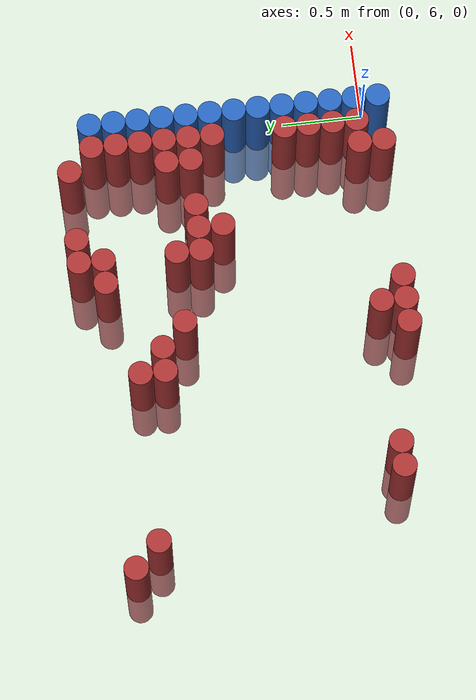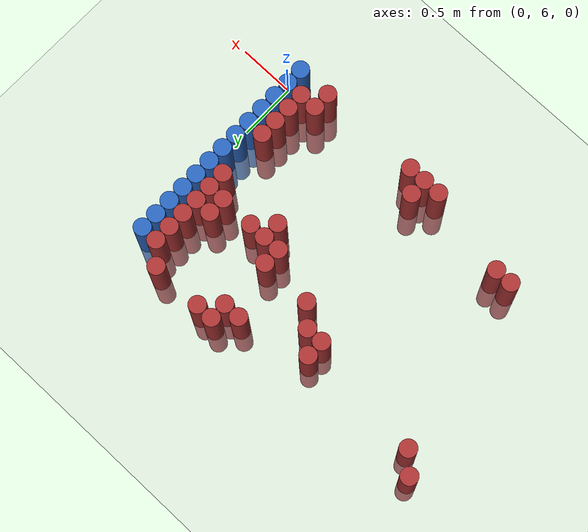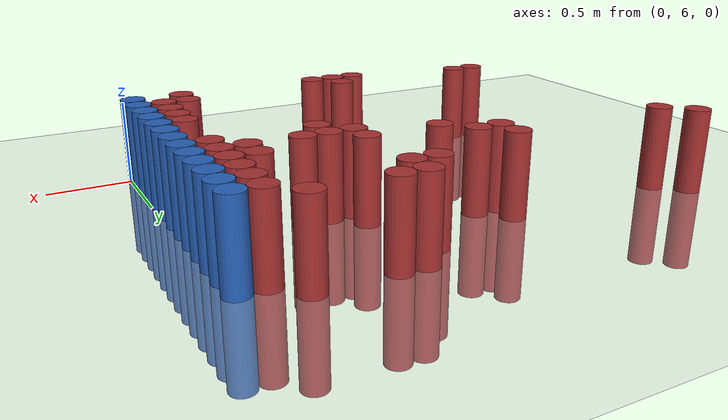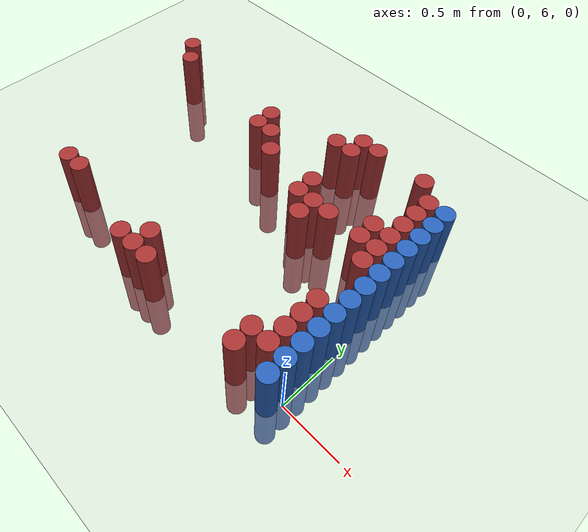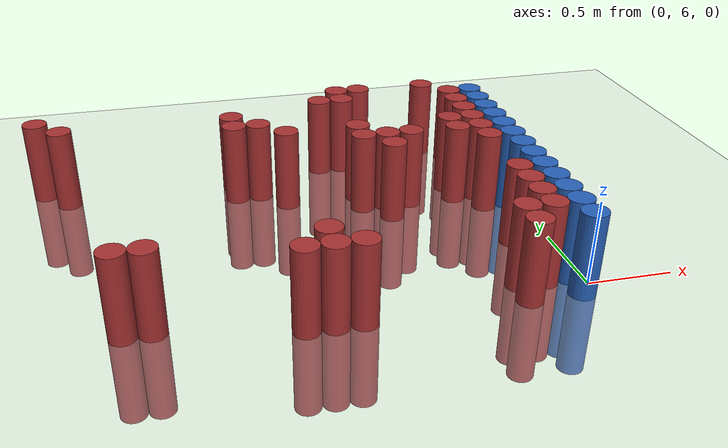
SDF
<sdf version="1.6">
 <world name="default">
  <model name="ground_plane">
   <static>1</static>
   <link name="link">
    <collision name="collision">
     <geometry><plane><normal>0 0 1</normal><size>100 100</size></plane></geometry>
     <surface><friction><ode><mu>100</mu><mu2>50</mu2></ode></friction></surface>
    </collision>
    <visual name="visual">
     <cast_shadows>0</cast_shadows>
     <geometry><plane><normal>0 0 1</normal><size>100 100</size></plane></geometry>
     <material>
      <script><uri>file://media/materials/scripts/gazebo.material</uri><name>Gazebo/Grey</name></script>
     </material>
    </visual>
   </link>
  </model>
  <model name="unit_cylinder_204">
   <static>1</static>
   <pose>-2.925000 7.725000 0.000000 0.000000 0.000000 0.000000</pose>
   <link name="link">
    <inertial>
     <mass>1</mass>
     <inertia><ixx>0.145833</ixx><ixy>0</ixy><ixz>0</ixz><iyy>0.145833</iyy><iyz>0</iyz><izz>0.125</izz></inertia>
    </inertial>
    <collision name="collision">
     <geometry><cylinder><radius>0.075000</radius><length>1</length></cylinder></geometry>
    </collision>
    <visual name="visual">
     <geometry><cylinder><radius>0.075000</radius><length>1</length></cylinder></geometry>
     <material>
      <ambient>0.648000 0.192000 0.192000 1</ambient>
      <diffuse>0.648000 0.192000 0.192000 1</diffuse>
     </material>
     <material>
      <script><name>Gazebo/Grey</name><uri>file://media/materials/scripts/gazebo.material</uri></script>
     </material>
    </visual>
   </link>
  </model>
  <model name="unit_cylinder_206">
   <static>1</static>
   <pose>-2.775000 7.575000 0.000000 0.000000 0.000000 0.000000</pose>
   <link name="link">
    <inertial>
     <mass>1</mass>
     <inertia><ixx>0.145833</ixx><ixy>0</ixy><ixz>0</ixz><iyy>0.145833</iyy><iyz>0</iyz><izz>0.125</izz></inertia>
    </inertial>
    <collision name="collision">
     <geometry><cylinder><radius>0.075000</radius><length>1</length></cylinder></geometry>
    </collision>
    <visual name="visual">
     <geometry><cylinder><radius>0.075000</radius><length>1</length></cylinder></geometry>
     <material>
      <ambient>0.648000 0.192000 0.192000 1</ambient>
      <diffuse>0.648000 0.192000 0.192000 1</diffuse>
     </material>
     <material>
      <script><name>Gazebo/Grey</name><uri>file://media/materials/scripts/gazebo.material</uri></script>
     </material>
    </visual>
   </link>
  </model>
  <model name="unit_cylinder_214">
   <static>1</static>
   <pose>-2.475000 6.075000 0.000000 0.000000 0.000000 0.000000</pose>
   <link name="link">
    <inertial>
     <mass>1</mass>
     <inertia><ixx>0.145833</ixx><ixy>0</ixy><ixz>0</ixz><iyy>0.145833</iyy><iyz>0</iyz><izz>0.125</izz></inertia>
    </inertial>
    <collision name="collision">
     <geometry><cylinder><radius>0.075000</radius><length>1</length></cylinder></geometry>
    </collision>
    <visual name="visual">
     <geometry><cylinder><radius>0.075000</radius><length>1</length></cylinder></geometry>
     <material>
      <ambient>0.648000 0.192000 0.192000 1</ambient>
      <diffuse>0.648000 0.192000 0.192000 1</diffuse>
     </material>
     <material>
      <script><name>Gazebo/Grey</name><uri>file://media/materials/scripts/gazebo.material</uri></script>
     </material>
    </visual>
   </link>
  </model>
  <model name="unit_cylinder_218">
   <static>1</static>
   <pose>-2.325000 6.075000 0.000000 0.000000 0.000000 0.000000</pose>
   <link name="link">
    <inertial>
     <mass>1</mass>
     <inertia><ixx>0.145833</ixx><ixy>0</ixy><ixz>0</ixz><iyy>0.145833</iyy><iyz>0</iyz><izz>0.125</izz></inertia>
    </inertial>
    <collision name="collision">
     <geometry><cylinder><radius>0.075000</radius><length>1</length></cylinder></geometry>
    </collision>
    <visual name="visual">
     <geometry><cylinder><radius>0.075000</radius><length>1</length></cylinder></geometry>
     <material>
      <ambient>0.648000 0.192000 0.192000 1</ambient>
      <diffuse>0.648000 0.192000 0.192000 1</diffuse>
     </material>
     <material>
      <script><name>Gazebo/Grey</name><uri>file://media/materials/scripts/gazebo.material</uri></script>
     </material>
    </visual>
   </link>
  </model>
  <model name="unit_cylinder_235">
   <static>1</static>
   <pose>-1.725000 7.425000 0.000000 0.000000 0.000000 0.000000</pose>
   <link name="link">
    <inertial>
     <mass>1</mass>
     <inertia><ixx>0.145833</ixx><ixy>0</ixy><ixz>0</ixz><iyy>0.145833</iyy><iyz>0</iyz><izz>0.125</izz></inertia>
    </inertial>
    <collision name="collision">
     <geometry><cylinder><radius>0.075000</radius><length>1</length></cylinder></geometry>
    </collision>
    <visual name="visual">
     <geometry><cylinder><radius>0.075000</radius><length>1</length></cylinder></geometry>
     <material>
      <ambient>0.648000 0.192000 0.192000 1</ambient>
      <diffuse>0.648000 0.192000 0.192000 1</diffuse>
     </material>
     <material>
      <script><name>Gazebo/Grey</name><uri>file://media/materials/scripts/gazebo.material</uri></script>
     </material>
    </visual>
   </link>
  </model>
  <model name="unit_cylinder_236">
   <static>1</static>
   <pose>-1.725000 7.575000 0.000000 0.000000 0.000000 0.000000</pose>
   <link name="link">
    <inertial>
     <mass>1</mass>
     <inertia><ixx>0.145833</ixx><ixy>0</ixy><ixz>0</ixz><iyy>0.145833</iyy><iyz>0</iyz><izz>0.125</izz></inertia>
    </inertial>
    <collision name="collision">
     <geometry><cylinder><radius>0.075000</radius><length>1</length></cylinder></geometry>
    </collision>
    <visual name="visual">
     <geometry><cylinder><radius>0.075000</radius><length>1</length></cylinder></geometry>
     <material>
      <ambient>0.648000 0.192000 0.192000 1</ambient>
      <diffuse>0.648000 0.192000 0.192000 1</diffuse>
     </material>
     <material>
      <script><name>Gazebo/Grey</name><uri>file://media/materials/scripts/gazebo.material</uri></script>
     </material>
    </visual>
   </link>
  </model>
  <model name="unit_cylinder_240">
   <static>1</static>
   <pose>-1.575000 5.925000 0.000000 0.000000 0.000000 0.000000</pose>
   <link name="link">
    <inertial>
     <mass>1</mass>
     <inertia><ixx>0.145833</ixx><ixy>0</ixy><ixz>0</ixz><iyy>0.145833</iyy><iyz>0</iyz><izz>0.125</izz></inertia>
    </inertial>
    <collision name="collision">
     <geometry><cylinder><radius>0.075000</radius><length>1</length></cylinder></geometry>
    </collision>
    <visual name="visual">
     <geometry><cylinder><radius>0.075000</radius><length>1</length></cylinder></geometry>
     <material>
      <ambient>0.648000 0.192000 0.192000 1</ambient>
      <diffuse>0.648000 0.192000 0.192000 1</diffuse>
     </material>
     <material>
      <script><name>Gazebo/Grey</name><uri>file://media/materials/scripts/gazebo.material</uri></script>
     </material>
    </visual>
   </link>
  </model>
  <model name="unit_cylinder_241">
   <static>1</static>
   <pose>-1.575000 7.425000 0.000000 0.000000 0.000000 0.000000</pose>
   <link name="link">
    <inertial>
     <mass>1</mass>
     <inertia><ixx>0.145833</ixx><ixy>0</ixy><ixz>0</ixz><iyy>0.145833</iyy><iyz>0</iyz><izz>0.125</izz></inertia>
    </inertial>
    <collision name="collision">
     <geometry><cylinder><radius>0.075000</radius><length>1</length></cylinder></geometry>
    </collision>
    <visual name="visual">
     <geometry><cylinder><radius>0.075000</radius><length>1</length></cylinder></geometry>
     <material>
      <ambient>0.648000 0.192000 0.192000 1</ambient>
      <diffuse>0.648000 0.192000 0.192000 1</diffuse>
     </material>
     <material>
      <script><name>Gazebo/Grey</name><uri>file://media/materials/scripts/gazebo.material</uri></script>
     </material>
    </visual>
   </link>
  </model>
  <model name="unit_cylinder_244">
   <static>1</static>
   <pose>-1.425000 5.925000 0.000000 0.000000 0.000000 0.000000</pose>
   <link name="link">
    <inertial>
     <mass>1</mass>
     <inertia><ixx>0.145833</ixx><ixy>0</ixy><ixz>0</ixz><iyy>0.145833</iyy><iyz>0</iyz><izz>0.125</izz></inertia>
    </inertial>
    <collision name="collision">
     <geometry><cylinder><radius>0.075000</radius><length>1</length></cylinder></geometry>
    </collision>
    <visual name="visual">
     <geometry><cylinder><radius>0.075000</radius><length>1</length></cylinder></geometry>
     <material>
      <ambient>0.648000 0.192000 0.192000 1</ambient>
      <diffuse>0.648000 0.192000 0.192000 1</diffuse>
     </material>
     <material>
      <script><name>Gazebo/Grey</name><uri>file://media/materials/scripts/gazebo.material</uri></script>
     </material>
    </visual>
   </link>
  </model>
  <model name="unit_cylinder_245">
   <static>1</static>
   <pose>-1.425000 6.075000 0.000000 0.000000 0.000000 0.000000</pose>
   <link name="link">
    <inertial>
     <mass>1</mass>
     <inertia><ixx>0.145833</ixx><ixy>0</ixy><ixz>0</ixz><iyy>0.145833</iyy><iyz>0</iyz><izz>0.125</izz></inertia>
    </inertial>
    <collision name="collision">
     <geometry><cylinder><radius>0.075000</radius><length>1</length></cylinder></geometry>
    </collision>
    <visual name="visual">
     <geometry><cylinder><radius>0.075000</radius><length>1</length></cylinder></geometry>
     <material>
      <ambient>0.648000 0.192000 0.192000 1</ambient>
      <diffuse>0.648000 0.192000 0.192000 1</diffuse>
     </material>
     <material>
      <script><name>Gazebo/Grey</name><uri>file://media/materials/scripts/gazebo.material</uri></script>
     </material>
    </visual>
   </link>
  </model>
  <model name="unit_cylinder_246">
   <static>1</static>
   <pose>-1.425000 7.275000 0.000000 0.000000 0.000000 0.000000</pose>
   <link name="link">
    <inertial>
     <mass>1</mass>
     <inertia><ixx>0.145833</ixx><ixy>0</ixy><ixz>0</ixz><iyy>0.145833</iyy><iyz>0</iyz><izz>0.125</izz></inertia>
    </inertial>
    <collision name="collision">
     <geometry><cylinder><radius>0.075000</radius><length>1</length></cylinder></geometry>
    </collision>
    <visual name="visual">
     <geometry><cylinder><radius>0.075000</radius><length>1</length></cylinder></geometry>
     <material>
      <ambient>0.648000 0.192000 0.192000 1</ambient>
      <diffuse>0.648000 0.192000 0.192000 1</diffuse>
     </material>
     <material>
      <script><name>Gazebo/Grey</name><uri>file://media/materials/scripts/gazebo.material</uri></script>
     </material>
    </visual>
   </link>
  </model>
  <model name="unit_cylinder_253">
   <static>1</static>
   <pose>-1.275000 5.925000 0.000000 0.000000 0.000000 0.000000</pose>
   <link name="link">
    <inertial>
     <mass>1</mass>
     <inertia><ixx>0.145833</ixx><ixy>0</ixy><ixz>0</ixz><iyy>0.145833</iyy><iyz>0</iyz><izz>0.125</izz></inertia>
    </inertial>
    <collision name="collision">
     <geometry><cylinder><radius>0.075000</radius><length>1</length></cylinder></geometry>
    </collision>
    <visual name="visual">
     <geometry><cylinder><radius>0.075000</radius><length>1</length></cylinder></geometry>
     <material>
      <ambient>0.648000 0.192000 0.192000 1</ambient>
      <diffuse>0.648000 0.192000 0.192000 1</diffuse>
     </material>
     <material>
      <script><name>Gazebo/Grey</name><uri>file://media/materials/scripts/gazebo.material</uri></script>
     </material>
    </visual>
   </link>
  </model>
  <model name="unit_cylinder_256">
   <static>1</static>
   <pose>-1.125000 7.725000 0.000000 0.000000 0.000000 0.000000</pose>
   <link name="link">
    <inertial>
     <mass>1</mass>
     <inertia><ixx>0.145833</ixx><ixy>0</ixy><ixz>0</ixz><iyy>0.145833</iyy><iyz>0</iyz><izz>0.125</izz></inertia>
    </inertial>
    <collision name="collision">
     <geometry><cylinder><radius>0.075000</radius><length>1</length></cylinder></geometry>
    </collision>
    <visual name="visual">
     <geometry><cylinder><radius>0.075000</radius><length>1</length></cylinder></geometry>
     <material>
      <ambient>0.648000 0.192000 0.192000 1</ambient>
      <diffuse>0.648000 0.192000 0.192000 1</diffuse>
     </material>
     <material>
      <script><name>Gazebo/Grey</name><uri>file://media/materials/scripts/gazebo.material</uri></script>
     </material>
    </visual>
   </link>
  </model>
  <model name="unit_cylinder_261">
   <static>1</static>
   <pose>-0.975000 7.125000 0.000000 0.000000 0.000000 0.000000</pose>
   <link name="link">
    <inertial>
     <mass>1</mass>
     <inertia><ixx>0.145833</ixx><ixy>0</ixy><ixz>0</ixz><iyy>0.145833</iyy><iyz>0</iyz><izz>0.125</izz></inertia>
    </inertial>
    <collision name="collision">
     <geometry><cylinder><radius>0.075000</radius><length>1</length></cylinder></geometry>
    </collision>
    <visual name="visual">
     <geometry><cylinder><radius>0.075000</radius><length>1</length></cylinder></geometry>
     <material>
      <ambient>0.648000 0.192000 0.192000 1</ambient>
      <diffuse>0.648000 0.192000 0.192000 1</diffuse>
     </material>
     <material>
      <script><name>Gazebo/Grey</name><uri>file://media/materials/scripts/gazebo.material</uri></script>
     </material>
    </visual>
   </link>
  </model>
  <model name="unit_cylinder_262">
   <static>1</static>
   <pose>-0.975000 7.275000 0.000000 0.000000 0.000000 0.000000</pose>
   <link name="link">
    <inertial>
     <mass>1</mass>
     <inertia><ixx>0.145833</ixx><ixy>0</ixy><ixz>0</ixz><iyy>0.145833</iyy><iyz>0</iyz><izz>0.125</izz></inertia>
    </inertial>
    <collision name="collision">
     <geometry><cylinder><radius>0.075000</radius><length>1</length></cylinder></geometry>
    </collision>
    <visual name="visual">
     <geometry><cylinder><radius>0.075000</radius><length>1</length></cylinder></geometry>
     <material>
      <ambient>0.648000 0.192000 0.192000 1</ambient>
      <diffuse>0.648000 0.192000 0.192000 1</diffuse>
     </material>
     <material>
      <script><name>Gazebo/Grey</name><uri>file://media/materials/scripts/gazebo.material</uri></script>
     </material>
    </visual>
   </link>
  </model>
  <model name="unit_cylinder_263">
   <static>1</static>
   <pose>-0.975000 7.725000 0.000000 0.000000 0.000000 0.000000</pose>
   <link name="link">
    <inertial>
     <mass>1</mass>
     <inertia><ixx>0.145833</ixx><ixy>0</ixy><ixz>0</ixz><iyy>0.145833</iyy><iyz>0</iyz><izz>0.125</izz></inertia>
    </inertial>
    <collision name="collision">
     <geometry><cylinder><radius>0.075000</radius><length>1</length></cylinder></geometry>
    </collision>
    <visual name="visual">
     <geometry><cylinder><radius>0.075000</radius><length>1</length></cylinder></geometry>
     <material>
      <ambient>0.648000 0.192000 0.192000 1</ambient>
      <diffuse>0.648000 0.192000 0.192000 1</diffuse>
     </material>
     <material>
      <script><name>Gazebo/Grey</name><uri>file://media/materials/scripts/gazebo.material</uri></script>
     </material>
    </visual>
   </link>
  </model>
  <model name="unit_cylinder_264">
   <static>1</static>
   <pose>-0.975000 7.875000 0.000000 0.000000 0.000000 0.000000</pose>
   <link name="link">
    <inertial>
     <mass>1</mass>
     <inertia><ixx>0.145833</ixx><ixy>0</ixy><ixz>0</ixz><iyy>0.145833</iyy><iyz>0</iyz><izz>0.125</izz></inertia>
    </inertial>
    <collision name="collision">
     <geometry><cylinder><radius>0.075000</radius><length>1</length></cylinder></geometry>
    </collision>
    <visual name="visual">
     <geometry><cylinder><radius>0.075000</radius><length>1</length></cylinder></geometry>
     <material>
      <ambient>0.648000 0.192000 0.192000 1</ambient>
      <diffuse>0.648000 0.192000 0.192000 1</diffuse>
     </material>
     <material>
      <script><name>Gazebo/Grey</name><uri>file://media/materials/scripts/gazebo.material</uri></script>
     </material>
    </visual>
   </link>
  </model>
  <model name="unit_cylinder_270">
   <static>1</static>
   <pose>-0.825000 6.975000 0.000000 0.000000 0.000000 0.000000</pose>
   <link name="link">
    <inertial>
     <mass>1</mass>
     <inertia><ixx>0.145833</ixx><ixy>0</ixy><ixz>0</ixz><iyy>0.145833</iyy><iyz>0</iyz><izz>0.125</izz></inertia>
    </inertial>
    <collision name="collision">
     <geometry><cylinder><radius>0.075000</radius><length>1</length></cylinder></geometry>
    </collision>
    <visual name="visual">
     <geometry><cylinder><radius>0.075000</radius><length>1</length></cylinder></geometry>
     <material>
      <ambient>0.648000 0.192000 0.192000 1</ambient>
      <diffuse>0.648000 0.192000 0.192000 1</diffuse>
     </material>
     <material>
      <script><name>Gazebo/Grey</name><uri>file://media/materials/scripts/gazebo.material</uri></script>
     </material>
    </visual>
   </link>
  </model>
  <model name="unit_cylinder_271">
   <static>1</static>
   <pose>-0.825000 7.125000 0.000000 0.000000 0.000000 0.000000</pose>
   <link name="link">
    <inertial>
     <mass>1</mass>
     <inertia><ixx>0.145833</ixx><ixy>0</ixy><ixz>0</ixz><iyy>0.145833</iyy><iyz>0</iyz><izz>0.125</izz></inertia>
    </inertial>
    <collision name="collision">
     <geometry><cylinder><radius>0.075000</radius><length>1</length></cylinder></geometry>
    </collision>
    <visual name="visual">
     <geometry><cylinder><radius>0.075000</radius><length>1</length></cylinder></geometry>
     <material>
      <ambient>0.648000 0.192000 0.192000 1</ambient>
      <diffuse>0.648000 0.192000 0.192000 1</diffuse>
     </material>
     <material>
      <script><name>Gazebo/Grey</name><uri>file://media/materials/scripts/gazebo.material</uri></script>
     </material>
    </visual>
   </link>
  </model>
  <model name="unit_cylinder_272">
   <static>1</static>
   <pose>-0.825000 7.875000 0.000000 0.000000 0.000000 0.000000</pose>
   <link name="link">
    <inertial>
     <mass>1</mass>
     <inertia><ixx>0.145833</ixx><ixy>0</ixy><ixz>0</ixz><iyy>0.145833</iyy><iyz>0</iyz><izz>0.125</izz></inertia>
    </inertial>
    <collision name="collision">
     <geometry><cylinder><radius>0.075000</radius><length>1</length></cylinder></geometry>
    </collision>
    <visual name="visual">
     <geometry><cylinder><radius>0.075000</radius><length>1</length></cylinder></geometry>
     <material>
      <ambient>0.648000 0.192000 0.192000 1</ambient>
      <diffuse>0.648000 0.192000 0.192000 1</diffuse>
     </material>
     <material>
      <script><name>Gazebo/Grey</name><uri>file://media/materials/scripts/gazebo.material</uri></script>
     </material>
    </visual>
   </link>
  </model>
  <model name="unit_cylinder_277">
   <static>1</static>
   <pose>-0.675000 7.125000 0.000000 0.000000 0.000000 0.000000</pose>
   <link name="link">
    <inertial>
     <mass>1</mass>
     <inertia><ixx>0.145833</ixx><ixy>0</ixy><ixz>0</ixz><iyy>0.145833</iyy><iyz>0</iyz><izz>0.125</izz></inertia>
    </inertial>
    <collision name="collision">
     <geometry><cylinder><radius>0.075000</radius><length>1</length></cylinder></geometry>
    </collision>
    <visual name="visual">
     <geometry><cylinder><radius>0.075000</radius><length>1</length></cylinder></geometry>
     <material>
      <ambient>0.648000 0.192000 0.192000 1</ambient>
      <diffuse>0.648000 0.192000 0.192000 1</diffuse>
     </material>
     <material>
      <script><name>Gazebo/Grey</name><uri>file://media/materials/scripts/gazebo.material</uri></script>
     </material>
    </visual>
   </link>
  </model>
  <model name="unit_cylinder_287">
   <static>1</static>
   <pose>-0.375000 5.925000 0.000000 0.000000 0.000000 0.000000</pose>
   <link name="link">
    <inertial>
     <mass>1</mass>
     <inertia><ixx>0.145833</ixx><ixy>0</ixy><ixz>0</ixz><iyy>0.145833</iyy><iyz>0</iyz><izz>0.125</izz></inertia>
    </inertial>
    <collision name="collision">
     <geometry><cylinder><radius>0.075000</radius><length>1</length></cylinder></geometry>
    </collision>
    <visual name="visual">
     <geometry><cylinder><radius>0.075000</radius><length>1</length></cylinder></geometry>
     <material>
      <ambient>0.648000 0.192000 0.192000 1</ambient>
      <diffuse>0.648000 0.192000 0.192000 1</diffuse>
     </material>
     <material>
      <script><name>Gazebo/Grey</name><uri>file://media/materials/scripts/gazebo.material</uri></script>
     </material>
    </visual>
   </link>
  </model>
  <model name="unit_cylinder_288">
   <static>1</static>
   <pose>-0.375000 6.075000 0.000000 0.000000 0.000000 0.000000</pose>
   <link name="link">
    <inertial>
     <mass>1</mass>
     <inertia><ixx>0.145833</ixx><ixy>0</ixy><ixz>0</ixz><iyy>0.145833</iyy><iyz>0</iyz><izz>0.125</izz></inertia>
    </inertial>
    <collision name="collision">
     <geometry><cylinder><radius>0.075000</radius><length>1</length></cylinder></geometry>
    </collision>
    <visual name="visual">
     <geometry><cylinder><radius>0.075000</radius><length>1</length></cylinder></geometry>
     <material>
      <ambient>0.648000 0.192000 0.192000 1</ambient>
      <diffuse>0.648000 0.192000 0.192000 1</diffuse>
     </material>
     <material>
      <script><name>Gazebo/Grey</name><uri>file://media/materials/scripts/gazebo.material</uri></script>
     </material>
    </visual>
   </link>
  </model>
  <model name="unit_cylinder_289">
   <static>1</static>
   <pose>-0.375000 7.125000 0.000000 0.000000 0.000000 0.000000</pose>
   <link name="link">
    <inertial>
     <mass>1</mass>
     <inertia><ixx>0.145833</ixx><ixy>0</ixy><ixz>0</ixz><iyy>0.145833</iyy><iyz>0</iyz><izz>0.125</izz></inertia>
    </inertial>
    <collision name="collision">
     <geometry><cylinder><radius>0.075000</radius><length>1</length></cylinder></geometry>
    </collision>
    <visual name="visual">
     <geometry><cylinder><radius>0.075000</radius><length>1</length></cylinder></geometry>
     <material>
      <ambient>0.648000 0.192000 0.192000 1</ambient>
      <diffuse>0.648000 0.192000 0.192000 1</diffuse>
     </material>
     <material>
      <script><name>Gazebo/Grey</name><uri>file://media/materials/scripts/gazebo.material</uri></script>
     </material>
    </visual>
   </link>
  </model>
  <model name="unit_cylinder_290">
   <static>1</static>
   <pose>-0.375000 7.275000 0.000000 0.000000 0.000000 0.000000</pose>
   <link name="link">
    <inertial>
     <mass>1</mass>
     <inertia><ixx>0.145833</ixx><ixy>0</ixy><ixz>0</ixz><iyy>0.145833</iyy><iyz>0</iyz><izz>0.125</izz></inertia>
    </inertial>
    <collision name="collision">
     <geometry><cylinder><radius>0.075000</radius><length>1</length></cylinder></geometry>
    </collision>
    <visual name="visual">
     <geometry><cylinder><radius>0.075000</radius><length>1</length></cylinder></geometry>
     <material>
      <ambient>0.648000 0.192000 0.192000 1</ambient>
      <diffuse>0.648000 0.192000 0.192000 1</diffuse>
     </material>
     <material>
      <script><name>Gazebo/Grey</name><uri>file://media/materials/scripts/gazebo.material</uri></script>
     </material>
    </visual>
   </link>
  </model>
  <model name="unit_cylinder_291">
   <static>1</static>
   <pose>-0.375000 7.875000 0.000000 0.000000 0.000000 0.000000</pose>
   <link name="link">
    <inertial>
     <mass>1</mass>
     <inertia><ixx>0.145833</ixx><ixy>0</ixy><ixz>0</ixz><iyy>0.145833</iyy><iyz>0</iyz><izz>0.125</izz></inertia>
    </inertial>
    <collision name="collision">
     <geometry><cylinder><radius>0.075000</radius><length>1</length></cylinder></geometry>
    </collision>
    <visual name="visual">
     <geometry><cylinder><radius>0.075000</radius><length>1</length></cylinder></geometry>
     <material>
      <ambient>0.648000 0.192000 0.192000 1</ambient>
      <diffuse>0.648000 0.192000 0.192000 1</diffuse>
     </material>
     <material>
      <script><name>Gazebo/Grey</name><uri>file://media/materials/scripts/gazebo.material</uri></script>
     </material>
    </visual>
   </link>
  </model>
  <model name="unit_cylinder_296">
   <static>1</static>
   <pose>-0.225000 6.075000 0.000000 0.000000 0.000000 0.000000</pose>
   <link name="link">
    <inertial>
     <mass>1</mass>
     <inertia><ixx>0.145833</ixx><ixy>0</ixy><ixz>0</ixz><iyy>0.145833</iyy><iyz>0</iyz><izz>0.125</izz></inertia>
    </inertial>
    <collision name="collision">
     <geometry><cylinder><radius>0.075000</radius><length>1</length></cylinder></geometry>
    </collision>
    <visual name="visual">
     <geometry><cylinder><radius>0.075000</radius><length>1</length></cylinder></geometry>
     <material>
      <ambient>0.648000 0.192000 0.192000 1</ambient>
      <diffuse>0.648000 0.192000 0.192000 1</diffuse>
     </material>
     <material>
      <script><name>Gazebo/Grey</name><uri>file://media/materials/scripts/gazebo.material</uri></script>
     </material>
    </visual>
   </link>
  </model>
  <model name="unit_cylinder_297">
   <static>1</static>
   <pose>-0.225000 6.225000 0.000000 0.000000 0.000000 0.000000</pose>
   <link name="link">
    <inertial>
     <mass>1</mass>
     <inertia><ixx>0.145833</ixx><ixy>0</ixy><ixz>0</ixz><iyy>0.145833</iyy><iyz>0</iyz><izz>0.125</izz></inertia>
    </inertial>
    <collision name="collision">
     <geometry><cylinder><radius>0.075000</radius><length>1</length></cylinder></geometry>
    </collision>
    <visual name="visual">
     <geometry><cylinder><radius>0.075000</radius><length>1</length></cylinder></geometry>
     <material>
      <ambient>0.648000 0.192000 0.192000 1</ambient>
      <diffuse>0.648000 0.192000 0.192000 1</diffuse>
     </material>
     <material>
      <script><name>Gazebo/Grey</name><uri>file://media/materials/scripts/gazebo.material</uri></script>
     </material>
    </visual>
   </link>
  </model>
  <model name="unit_cylinder_298">
   <static>1</static>
   <pose>-0.225000 6.375000 0.000000 0.000000 0.000000 0.000000</pose>
   <link name="link">
    <inertial>
     <mass>1</mass>
     <inertia><ixx>0.145833</ixx><ixy>0</ixy><ixz>0</ixz><iyy>0.145833</iyy><iyz>0</iyz><izz>0.125</izz></inertia>
    </inertial>
    <collision name="collision">
     <geometry><cylinder><radius>0.075000</radius><length>1</length></cylinder></geometry>
    </collision>
    <visual name="visual">
     <geometry><cylinder><radius>0.075000</radius><length>1</length></cylinder></geometry>
     <material>
      <ambient>0.648000 0.192000 0.192000 1</ambient>
      <diffuse>0.648000 0.192000 0.192000 1</diffuse>
     </material>
     <material>
      <script><name>Gazebo/Grey</name><uri>file://media/materials/scripts/gazebo.material</uri></script>
     </material>
    </visual>
   </link>
  </model>
  <model name="unit_cylinder_299">
   <static>1</static>
   <pose>-0.225000 6.525000 0.000000 0.000000 0.000000 0.000000</pose>
   <link name="link">
    <inertial>
     <mass>1</mass>
     <inertia><ixx>0.145833</ixx><ixy>0</ixy><ixz>0</ixz><iyy>0.145833</iyy><iyz>0</iyz><izz>0.125</izz></inertia>
    </inertial>
    <collision name="collision">
     <geometry><cylinder><radius>0.075000</radius><length>1</length></cylinder></geometry>
    </collision>
    <visual name="visual">
     <geometry><cylinder><radius>0.075000</radius><length>1</length></cylinder></geometry>
     <material>
      <ambient>0.648000 0.192000 0.192000 1</ambient>
      <diffuse>0.648000 0.192000 0.192000 1</diffuse>
     </material>
     <material>
      <script><name>Gazebo/Grey</name><uri>file://media/materials/scripts/gazebo.material</uri></script>
     </material>
    </visual>
   </link>
  </model>
  <model name="unit_cylinder_300">
   <static>1</static>
   <pose>-0.225000 6.975000 0.000000 0.000000 0.000000 0.000000</pose>
   <link name="link">
    <inertial>
     <mass>1</mass>
     <inertia><ixx>0.145833</ixx><ixy>0</ixy><ixz>0</ixz><iyy>0.145833</iyy><iyz>0</iyz><izz>0.125</izz></inertia>
    </inertial>
    <collision name="collision">
     <geometry><cylinder><radius>0.075000</radius><length>1</length></cylinder></geometry>
    </collision>
    <visual name="visual">
     <geometry><cylinder><radius>0.075000</radius><length>1</length></cylinder></geometry>
     <material>
      <ambient>0.648000 0.192000 0.192000 1</ambient>
      <diffuse>0.648000 0.192000 0.192000 1</diffuse>
     </material>
     <material>
      <script><name>Gazebo/Grey</name><uri>file://media/materials/scripts/gazebo.material</uri></script>
     </material>
    </visual>
   </link>
  </model>
  <model name="unit_cylinder_301">
   <static>1</static>
   <pose>-0.225000 7.125000 0.000000 0.000000 0.000000 0.000000</pose>
   <link name="link">
    <inertial>
     <mass>1</mass>
     <inertia><ixx>0.145833</ixx><ixy>0</ixy><ixz>0</ixz><iyy>0.145833</iyy><iyz>0</iyz><izz>0.125</izz></inertia>
    </inertial>
    <collision name="collision">
     <geometry><cylinder><radius>0.075000</radius><length>1</length></cylinder></geometry>
    </collision>
    <visual name="visual">
     <geometry><cylinder><radius>0.075000</radius><length>1</length></cylinder></geometry>
     <material>
      <ambient>0.648000 0.192000 0.192000 1</ambient>
      <diffuse>0.648000 0.192000 0.192000 1</diffuse>
     </material>
     <material>
      <script><name>Gazebo/Grey</name><uri>file://media/materials/scripts/gazebo.material</uri></script>
     </material>
    </visual>
   </link>
  </model>
  <model name="unit_cylinder_302">
   <static>1</static>
   <pose>-0.225000 7.275000 0.000000 0.000000 0.000000 0.000000</pose>
   <link name="link">
    <inertial>
     <mass>1</mass>
     <inertia><ixx>0.145833</ixx><ixy>0</ixy><ixz>0</ixz><iyy>0.145833</iyy><iyz>0</iyz><izz>0.125</izz></inertia>
    </inertial>
    <collision name="collision">
     <geometry><cylinder><radius>0.075000</radius><length>1</length></cylinder></geometry>
    </collision>
    <visual name="visual">
     <geometry><cylinder><radius>0.075000</radius><length>1</length></cylinder></geometry>
     <material>
      <ambient>0.648000 0.192000 0.192000 1</ambient>
      <diffuse>0.648000 0.192000 0.192000 1</diffuse>
     </material>
     <material>
      <script><name>Gazebo/Grey</name><uri>file://media/materials/scripts/gazebo.material</uri></script>
     </material>
    </visual>
   </link>
  </model>
  <model name="unit_cylinder_303">
   <static>1</static>
   <pose>-0.225000 7.425000 0.000000 0.000000 0.000000 0.000000</pose>
   <link name="link">
    <inertial>
     <mass>1</mass>
     <inertia><ixx>0.145833</ixx><ixy>0</ixy><ixz>0</ixz><iyy>0.145833</iyy><iyz>0</iyz><izz>0.125</izz></inertia>
    </inertial>
    <collision name="collision">
     <geometry><cylinder><radius>0.075000</radius><length>1</length></cylinder></geometry>
    </collision>
    <visual name="visual">
     <geometry><cylinder><radius>0.075000</radius><length>1</length></cylinder></geometry>
     <material>
      <ambient>0.648000 0.192000 0.192000 1</ambient>
      <diffuse>0.648000 0.192000 0.192000 1</diffuse>
     </material>
     <material>
      <script><name>Gazebo/Grey</name><uri>file://media/materials/scripts/gazebo.material</uri></script>
     </material>
    </visual>
   </link>
  </model>
  <model name="unit_cylinder_304">
   <static>1</static>
   <pose>-0.225000 7.575000 0.000000 0.000000 0.000000 0.000000</pose>
   <link name="link">
    <inertial>
     <mass>1</mass>
     <inertia><ixx>0.145833</ixx><ixy>0</ixy><ixz>0</ixz><iyy>0.145833</iyy><iyz>0</iyz><izz>0.125</izz></inertia>
    </inertial>
    <collision name="collision">
     <geometry><cylinder><radius>0.075000</radius><length>1</length></cylinder></geometry>
    </collision>
    <visual name="visual">
     <geometry><cylinder><radius>0.075000</radius><length>1</length></cylinder></geometry>
     <material>
      <ambient>0.648000 0.192000 0.192000 1</ambient>
      <diffuse>0.648000 0.192000 0.192000 1</diffuse>
     </material>
     <material>
      <script><name>Gazebo/Grey</name><uri>file://media/materials/scripts/gazebo.material</uri></script>
     </material>
    </visual>
   </link>
  </model>
  <model name="unit_cylinder_305">
   <static>1</static>
   <pose>-0.225000 7.725000 0.000000 0.000000 0.000000 0.000000</pose>
   <link name="link">
    <inertial>
     <mass>1</mass>
     <inertia><ixx>0.145833</ixx><ixy>0</ixy><ixz>0</ixz><iyy>0.145833</iyy><iyz>0</iyz><izz>0.125</izz></inertia>
    </inertial>
    <collision name="collision">
     <geometry><cylinder><radius>0.075000</radius><length>1</length></cylinder></geometry>
    </collision>
    <visual name="visual">
     <geometry><cylinder><radius>0.075000</radius><length>1</length></cylinder></geometry>
     <material>
      <ambient>0.648000 0.192000 0.192000 1</ambient>
      <diffuse>0.648000 0.192000 0.192000 1</diffuse>
     </material>
     <material>
      <script><name>Gazebo/Grey</name><uri>file://media/materials/scripts/gazebo.material</uri></script>
     </material>
    </visual>
   </link>
  </model>
  <model name="unit_cylinder_317">
   <static>1</static>
   <pose>-0.075000 5.925000 0.000000 0.000000 0.000000 0.000000</pose>
   <link name="link">
    <inertial>
     <mass>1</mass>
     <inertia><ixx>0.145833</ixx><ixy>0</ixy><ixz>0</ixz><iyy>0.145833</iyy><iyz>0</iyz><izz>0.125</izz></inertia>
    </inertial>
    <collision name="collision">
     <geometry><cylinder><radius>0.075000</radius><length>1</length></cylinder></geometry>
    </collision>
    <visual name="visual">
     <geometry><cylinder><radius>0.075000</radius><length>1</length></cylinder></geometry>
     <material>
      <ambient>0.152000 0.379000 0.720000 1</ambient>
      <diffuse>0.152000 0.379000 0.720000 1</diffuse>
     </material>
     <material>
      <script><name>Gazebo/Grey</name><uri>file://media/materials/scripts/gazebo.material</uri></script>
     </material>
    </visual>
   </link>
  </model>
  <model name="unit_cylinder_318">
   <static>1</static>
   <pose>-0.075000 6.075000 0.000000 0.000000 0.000000 0.000000</pose>
   <link name="link">
    <inertial>
     <mass>1</mass>
     <inertia><ixx>0.145833</ixx><ixy>0</ixy><ixz>0</ixz><iyy>0.145833</iyy><iyz>0</iyz><izz>0.125</izz></inertia>
    </inertial>
    <collision name="collision">
     <geometry><cylinder><radius>0.075000</radius><length>1</length></cylinder></geometry>
    </collision>
    <visual name="visual">
     <geometry><cylinder><radius>0.075000</radius><length>1</length></cylinder></geometry>
     <material>
      <ambient>0.152000 0.379000 0.720000 1</ambient>
      <diffuse>0.152000 0.379000 0.720000 1</diffuse>
     </material>
     <material>
      <script><name>Gazebo/Grey</name><uri>file://media/materials/scripts/gazebo.material</uri></script>
     </material>
    </visual>
   </link>
  </model>
  <model name="unit_cylinder_319">
   <static>1</static>
   <pose>-0.075000 6.225000 0.000000 0.000000 0.000000 0.000000</pose>
   <link name="link">
    <inertial>
     <mass>1</mass>
     <inertia><ixx>0.145833</ixx><ixy>0</ixy><ixz>0</ixz><iyy>0.145833</iyy><iyz>0</iyz><izz>0.125</izz></inertia>
    </inertial>
    <collision name="collision">
     <geometry><cylinder><radius>0.075000</radius><length>1</length></cylinder></geometry>
    </collision>
    <visual name="visual">
     <geometry><cylinder><radius>0.075000</radius><length>1</length></cylinder></geometry>
     <material>
      <ambient>0.152000 0.379000 0.720000 1</ambient>
      <diffuse>0.152000 0.379000 0.720000 1</diffuse>
     </material>
     <material>
      <script><name>Gazebo/Grey</name><uri>file://media/materials/scripts/gazebo.material</uri></script>
     </material>
    </visual>
   </link>
  </model>
  <model name="unit_cylinder_320">
   <static>1</static>
   <pose>-0.075000 6.375000 0.000000 0.000000 0.000000 0.000000</pose>
   <link name="link">
    <inertial>
     <mass>1</mass>
     <inertia><ixx>0.145833</ixx><ixy>0</ixy><ixz>0</ixz><iyy>0.145833</iyy><iyz>0</iyz><izz>0.125</izz></inertia>
    </inertial>
    <collision name="collision">
     <geometry><cylinder><radius>0.075000</radius><length>1</length></cylinder></geometry>
    </collision>
    <visual name="visual">
     <geometry><cylinder><radius>0.075000</radius><length>1</length></cylinder></geometry>
     <material>
      <ambient>0.152000 0.379000 0.720000 1</ambient>
      <diffuse>0.152000 0.379000 0.720000 1</diffuse>
     </material>
     <material>
      <script><name>Gazebo/Grey</name><uri>file://media/materials/scripts/gazebo.material</uri></script>
     </material>
    </visual>
   </link>
  </model>
  <model name="unit_cylinder_321">
   <static>1</static>
   <pose>-0.075000 6.525000 0.000000 0.000000 0.000000 0.000000</pose>
   <link name="link">
    <inertial>
     <mass>1</mass>
     <inertia><ixx>0.145833</ixx><ixy>0</ixy><ixz>0</ixz><iyy>0.145833</iyy><iyz>0</iyz><izz>0.125</izz></inertia>
    </inertial>
    <collision name="collision">
     <geometry><cylinder><radius>0.075000</radius><length>1</length></cylinder></geometry>
    </collision>
    <visual name="visual">
     <geometry><cylinder><radius>0.075000</radius><length>1</length></cylinder></geometry>
     <material>
      <ambient>0.152000 0.379000 0.720000 1</ambient>
      <diffuse>0.152000 0.379000 0.720000 1</diffuse>
     </material>
     <material>
      <script><name>Gazebo/Grey</name><uri>file://media/materials/scripts/gazebo.material</uri></script>
     </material>
    </visual>
   </link>
  </model>
  <model name="unit_cylinder_322">
   <static>1</static>
   <pose>-0.075000 6.675000 0.000000 0.000000 0.000000 0.000000</pose>
   <link name="link">
    <inertial>
     <mass>1</mass>
     <inertia><ixx>0.145833</ixx><ixy>0</ixy><ixz>0</ixz><iyy>0.145833</iyy><iyz>0</iyz><izz>0.125</izz></inertia>
    </inertial>
    <collision name="collision">
     <geometry><cylinder><radius>0.075000</radius><length>1</length></cylinder></geometry>
    </collision>
    <visual name="visual">
     <geometry><cylinder><radius>0.075000</radius><length>1</length></cylinder></geometry>
     <material>
      <ambient>0.152000 0.379000 0.720000 1</ambient>
      <diffuse>0.152000 0.379000 0.720000 1</diffuse>
     </material>
     <material>
      <script><name>Gazebo/Grey</name><uri>file://media/materials/scripts/gazebo.material</uri></script>
     </material>
    </visual>
   </link>
  </model>
  <model name="unit_cylinder_323">
   <static>1</static>
   <pose>-0.075000 6.825000 0.000000 0.000000 0.000000 0.000000</pose>
   <link name="link">
    <inertial>
     <mass>1</mass>
     <inertia><ixx>0.145833</ixx><ixy>0</ixy><ixz>0</ixz><iyy>0.145833</iyy><iyz>0</iyz><izz>0.125</izz></inertia>
    </inertial>
    <collision name="collision">
     <geometry><cylinder><radius>0.075000</radius><length>1</length></cylinder></geometry>
    </collision>
    <visual name="visual">
     <geometry><cylinder><radius>0.075000</radius><length>1</length></cylinder></geometry>
     <material>
      <ambient>0.152000 0.379000 0.720000 1</ambient>
      <diffuse>0.152000 0.379000 0.720000 1</diffuse>
     </material>
     <material>
      <script><name>Gazebo/Grey</name><uri>file://media/materials/scripts/gazebo.material</uri></script>
     </material>
    </visual>
   </link>
  </model>
  <model name="unit_cylinder_324">
   <static>1</static>
   <pose>-0.075000 6.975000 0.000000 0.000000 0.000000 0.000000</pose>
   <link name="link">
    <inertial>
     <mass>1</mass>
     <inertia><ixx>0.145833</ixx><ixy>0</ixy><ixz>0</ixz><iyy>0.145833</iyy><iyz>0</iyz><izz>0.125</izz></inertia>
    </inertial>
    <collision name="collision">
     <geometry><cylinder><radius>0.075000</radius><length>1</length></cylinder></geometry>
    </collision>
    <visual name="visual">
     <geometry><cylinder><radius>0.075000</radius><length>1</length></cylinder></geometry>
     <material>
      <ambient>0.152000 0.379000 0.720000 1</ambient>
      <diffuse>0.152000 0.379000 0.720000 1</diffuse>
     </material>
     <material>
      <script><name>Gazebo/Grey</name><uri>file://media/materials/scripts/gazebo.material</uri></script>
     </material>
    </visual>
   </link>
  </model>
  <model name="unit_cylinder_325">
   <static>1</static>
   <pose>-0.075000 7.125000 0.000000 0.000000 0.000000 0.000000</pose>
   <link name="link">
    <inertial>
     <mass>1</mass>
     <inertia><ixx>0.145833</ixx><ixy>0</ixy><ixz>0</ixz><iyy>0.145833</iyy><iyz>0</iyz><izz>0.125</izz></inertia>
    </inertial>
    <collision name="collision">
     <geometry><cylinder><radius>0.075000</radius><length>1</length></cylinder></geometry>
    </collision>
    <visual name="visual">
     <geometry><cylinder><radius>0.075000</radius><length>1</length></cylinder></geometry>
     <material>
      <ambient>0.152000 0.379000 0.720000 1</ambient>
      <diffuse>0.152000 0.379000 0.720000 1</diffuse>
     </material>
     <material>
      <script><name>Gazebo/Grey</name><uri>file://media/materials/scripts/gazebo.material</uri></script>
     </material>
    </visual>
   </link>
  </model>
  <model name="unit_cylinder_326">
   <static>1</static>
   <pose>-0.075000 7.275000 0.000000 0.000000 0.000000 0.000000</pose>
   <link name="link">
    <inertial>
     <mass>1</mass>
     <inertia><ixx>0.145833</ixx><ixy>0</ixy><ixz>0</ixz><iyy>0.145833</iyy><iyz>0</iyz><izz>0.125</izz></inertia>
    </inertial>
    <collision name="collision">
     <geometry><cylinder><radius>0.075000</radius><length>1</length></cylinder></geometry>
    </collision>
    <visual name="visual">
     <geometry><cylinder><radius>0.075000</radius><length>1</length></cylinder></geometry>
     <material>
      <ambient>0.152000 0.379000 0.720000 1</ambient>
      <diffuse>0.152000 0.379000 0.720000 1</diffuse>
     </material>
     <material>
      <script><name>Gazebo/Grey</name><uri>file://media/materials/scripts/gazebo.material</uri></script>
     </material>
    </visual>
   </link>
  </model>
  <model name="unit_cylinder_327">
   <static>1</static>
   <pose>-0.075000 7.425000 0.000000 0.000000 0.000000 0.000000</pose>
   <link name="link">
    <inertial>
     <mass>1</mass>
     <inertia><ixx>0.145833</ixx><ixy>0</ixy><ixz>0</ixz><iyy>0.145833</iyy><iyz>0</iyz><izz>0.125</izz></inertia>
    </inertial>
    <collision name="collision">
     <geometry><cylinder><radius>0.075000</radius><length>1</length></cylinder></geometry>
    </collision>
    <visual name="visual">
     <geometry><cylinder><radius>0.075000</radius><length>1</length></cylinder></geometry>
     <material>
      <ambient>0.152000 0.379000 0.720000 1</ambient>
      <diffuse>0.152000 0.379000 0.720000 1</diffuse>
     </material>
     <material>
      <script><name>Gazebo/Grey</name><uri>file://media/materials/scripts/gazebo.material</uri></script>
     </material>
    </visual>
   </link>
  </model>
  <model name="unit_cylinder_328">
   <static>1</static>
   <pose>-0.075000 7.575000 0.000000 0.000000 0.000000 0.000000</pose>
   <link name="link">
    <inertial>
     <mass>1</mass>
     <inertia><ixx>0.145833</ixx><ixy>0</ixy><ixz>0</ixz><iyy>0.145833</iyy><iyz>0</iyz><izz>0.125</izz></inertia>
    </inertial>
    <collision name="collision">
     <geometry><cylinder><radius>0.075000</radius><length>1</length></cylinder></geometry>
    </collision>
    <visual name="visual">
     <geometry><cylinder><radius>0.075000</radius><length>1</length></cylinder></geometry>
     <material>
      <ambient>0.152000 0.379000 0.720000 1</ambient>
      <diffuse>0.152000 0.379000 0.720000 1</diffuse>
     </material>
     <material>
      <script><name>Gazebo/Grey</name><uri>file://media/materials/scripts/gazebo.material</uri></script>
     </material>
    </visual>
   </link>
  </model>
  <model name="unit_cylinder_329">
   <static>1</static>
   <pose>-0.075000 7.725000 0.000000 0.000000 0.000000 0.000000</pose>
   <link name="link">
    <inertial>
     <mass>1</mass>
     <inertia><ixx>0.145833</ixx><ixy>0</ixy><ixz>0</ixz><iyy>0.145833</iyy><iyz>0</iyz><izz>0.125</izz></inertia>
    </inertial>
    <collision name="collision">
     <geometry><cylinder><radius>0.075000</radius><length>1</length></cylinder></geometry>
    </collision>
    <visual name="visual">
     <geometry><cylinder><radius>0.075000</radius><length>1</length></cylinder></geometry>
     <material>
      <ambient>0.152000 0.379000 0.720000 1</ambient>
      <diffuse>0.152000 0.379000 0.720000 1</diffuse>
     </material>
     <material>
      <script><name>Gazebo/Grey</name><uri>file://media/materials/scripts/gazebo.material</uri></script>
     </material>
    </visual>
   </link>
  </model>
 </world>
</sdf>
